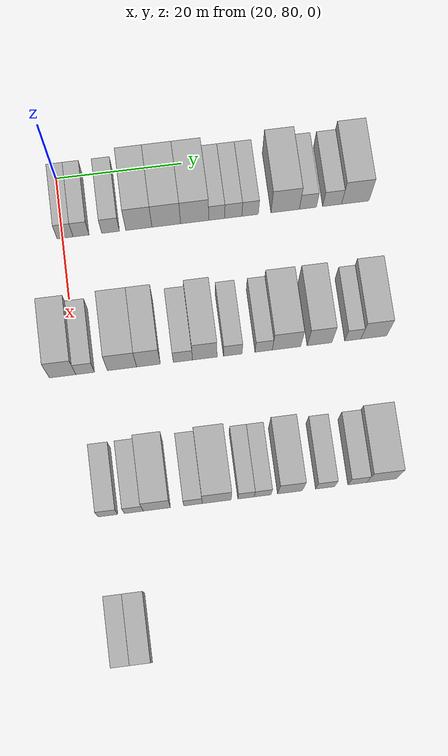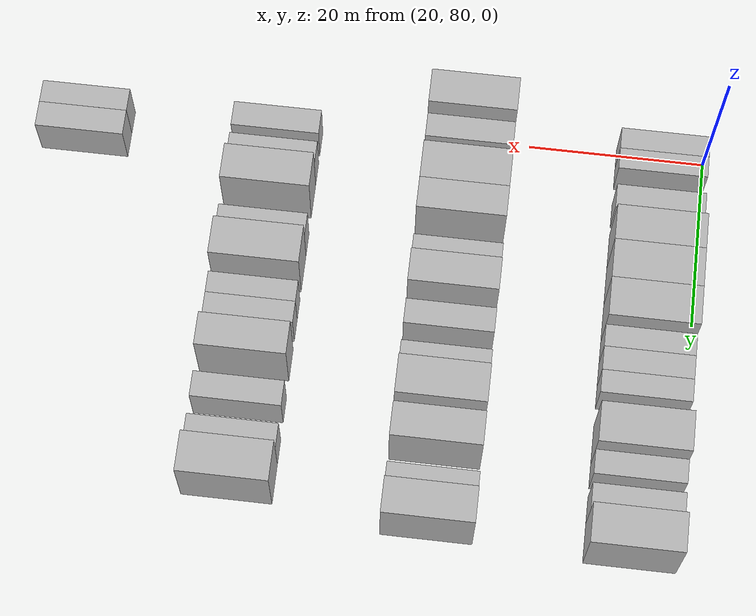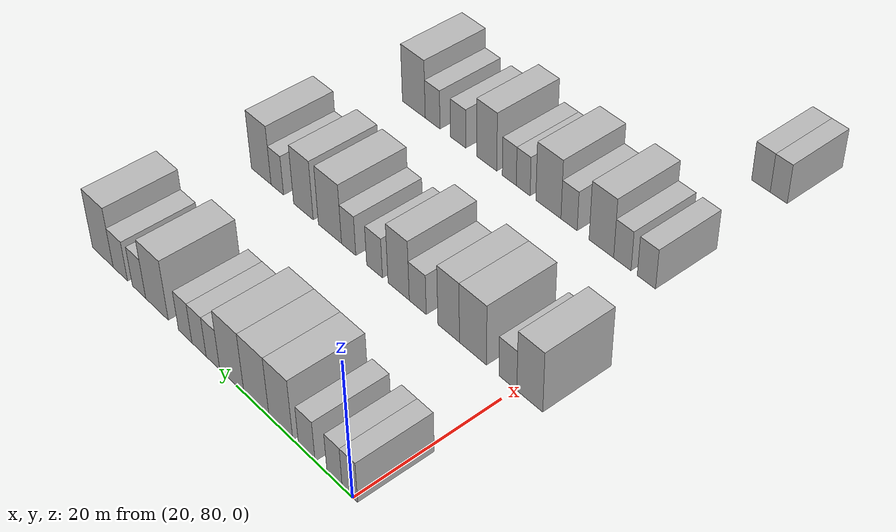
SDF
<sdf version="1.6">
 <world name="default">
  <model name="building_107">
   <static>1</static>
   <pose>25.0000 80.4806 0 0.000000 0.000000 0.000000</pose>
   <link name="link">
    <pose>0 0 3.00 0 0 0</pose>
    <collision name="collision"><geometry><box><size>10.0000 2.5077 6.0000</size></box></geometry></collision>
    <visual name="visual">
     <cast_shadows>0</cast_shadows>
     <geometry><box><size>10.0000 2.5077 6.0000</size></box></geometry>
     <material>
      <script>
       <uri>model://HANNAS_wall/materials/scripts</uri>
       <uri>model://HANNAS_wall/materials/textures</uri>
       <name>vrc/HANNAS_wall</name>
      </script>
     </material>
    </visual>
   </link>
  </model>
  <model name="building_108">
   <static>1</static>
   <pose>25.0000 82.9794 0 0.000000 0.000000 0.000000</pose>
   <link name="link">
    <pose>0 0 3.00 0 0 0</pose>
    <collision name="collision"><geometry><box><size>10.0000 2.4899 6.0000</size></box></geometry></collision>
    <visual name="visual">
     <cast_shadows>0</cast_shadows>
     <geometry><box><size>10.0000 2.4899 6.0000</size></box></geometry>
     <material>
      <script>
       <uri>model://HANNAS_wall/materials/scripts</uri>
       <uri>model://HANNAS_wall/materials/textures</uri>
       <name>vrc/HANNAS_wall</name>
      </script>
     </material>
    </visual>
   </link>
  </model>
  <model name="building_109">
   <static>1</static>
   <pose>25.0000 87.6174 0 0.000000 0.000000 0.000000</pose>
   <link name="link">
    <pose>0 0 3.00 0 0 0</pose>
    <collision name="collision"><geometry><box><size>10.0000 2.7862 6.0000</size></box></geometry></collision>
    <visual name="visual">
     <cast_shadows>0</cast_shadows>
     <geometry><box><size>10.0000 2.7862 6.0000</size></box></geometry>
     <material>
      <script>
       <uri>model://HANNAS_wall/materials/scripts</uri>
       <uri>model://HANNAS_wall/materials/textures</uri>
       <name>vrc/HANNAS_wall</name>
      </script>
     </material>
    </visual>
   </link>
  </model>
  <model name="building_110">
   <static>1</static>
   <pose>25.0000 92.0696 0 0.000000 0.000000 0.000000</pose>
   <link name="link">
    <pose>0 0 4.50 0 0 0</pose>
    <collision name="collision"><geometry><box><size>10.0000 4.1181 9.0000</size></box></geometry></collision>
    <visual name="visual">
     <cast_shadows>0</cast_shadows>
     <geometry><box><size>10.0000 4.1181 9.0000</size></box></geometry>
     <material>
      <script>
       <uri>model://HANNAS_wall/materials/scripts</uri>
       <uri>model://HANNAS_wall/materials/textures</uri>
       <name>vrc/HANNAS_wall</name>
      </script>
     </material>
    </visual>
   </link>
  </model>
  <model name="building_111">
   <static>1</static>
   <pose>25.0000 96.3772 0 0.000000 0.000000 0.000000</pose>
   <link name="link">
    <pose>0 0 4.50 0 0 0</pose>
    <collision name="collision"><geometry><box><size>10.0000 4.4972 9.0000</size></box></geometry></collision>
    <visual name="visual">
     <cast_shadows>0</cast_shadows>
     <geometry><box><size>10.0000 4.4972 9.0000</size></box></geometry>
     <material>
      <script>
       <uri>model://HANNAS_wall/materials/scripts</uri>
       <uri>model://HANNAS_wall/materials/textures</uri>
       <name>vrc/HANNAS_wall</name>
      </script>
     </material>
    </visual>
   </link>
  </model>
  <model name="building_112">
   <static>1</static>
   <pose>25.0000 100.8477 0 0.000000 0.000000 0.000000</pose>
   <link name="link">
    <pose>0 0 4.50 0 0 0</pose>
    <collision name="collision"><geometry><box><size>10.0000 4.4437 9.0000</size></box></geometry></collision>
    <visual name="visual">
     <cast_shadows>0</cast_shadows>
     <geometry><box><size>10.0000 4.4437 9.0000</size></box></geometry>
     <material>
      <script>
       <uri>model://HANNAS_wall/materials/scripts</uri>
       <uri>model://HANNAS_wall/materials/textures</uri>
       <name>vrc/HANNAS_wall</name>
      </script>
     </material>
    </visual>
   </link>
  </model>
  <model name="building_113">
   <static>1</static>
   <pose>25.0000 104.3367 0 0.000000 0.000000 0.000000</pose>
   <link name="link">
    <pose>0 0 3.00 0 0 0</pose>
    <collision name="collision"><geometry><box><size>10.0000 2.5344 6.0000</size></box></geometry></collision>
    <visual name="visual">
     <cast_shadows>0</cast_shadows>
     <geometry><box><size>10.0000 2.5344 6.0000</size></box></geometry>
     <material>
      <script>
       <uri>model://HANNAS_wall/materials/scripts</uri>
       <uri>model://HANNAS_wall/materials/textures</uri>
       <name>vrc/HANNAS_wall</name>
      </script>
     </material>
    </visual>
   </link>
  </model>
  <model name="building_114">
   <static>1</static>
   <pose>25.0000 106.9568 0 0.000000 0.000000 0.000000</pose>
   <link name="link">
    <pose>0 0 3.00 0 0 0</pose>
    <collision name="collision"><geometry><box><size>10.0000 2.7058 6.0000</size></box></geometry></collision>
    <visual name="visual">
     <cast_shadows>0</cast_shadows>
     <geometry><box><size>10.0000 2.7058 6.0000</size></box></geometry>
     <material>
      <script>
       <uri>model://HANNAS_wall/materials/scripts</uri>
       <uri>model://HANNAS_wall/materials/textures</uri>
       <name>vrc/HANNAS_wall</name>
      </script>
     </material>
    </visual>
   </link>
  </model>
  <model name="building_115">
   <static>1</static>
   <pose>25.0000 109.6097 0 0.000000 0.000000 0.000000</pose>
   <link name="link">
    <pose>0 0 3.00 0 0 0</pose>
    <collision name="collision"><geometry><box><size>10.0000 2.5999 6.0000</size></box></geometry></collision>
    <visual name="visual">
     <cast_shadows>0</cast_shadows>
     <geometry><box><size>10.0000 2.5999 6.0000</size></box></geometry>
     <material>
      <script>
       <uri>model://HANNAS_wall/materials/scripts</uri>
       <uri>model://HANNAS_wall/materials/textures</uri>
       <name>vrc/HANNAS_wall</name>
      </script>
     </material>
    </visual>
   </link>
  </model>
  <model name="building_116">
   <static>1</static>
   <pose>25.0000 115.1558 0 0.000000 0.000000 0.000000</pose>
   <link name="link">
    <pose>0 0 4.50 0 0 0</pose>
    <collision name="collision"><geometry><box><size>10.0000 4.4924 9.0000</size></box></geometry></collision>
    <visual name="visual">
     <cast_shadows>0</cast_shadows>
     <geometry><box><size>10.0000 4.4924 9.0000</size></box></geometry>
     <material>
      <script>
       <uri>model://HANNAS_wall/materials/scripts</uri>
       <uri>model://HANNAS_wall/materials/textures</uri>
       <name>vrc/HANNAS_wall</name>
      </script>
     </material>
    </visual>
   </link>
  </model>
  <model name="building_117">
   <static>1</static>
   <pose>25.0000 118.7515 0 0.000000 0.000000 0.000000</pose>
   <link name="link">
    <pose>0 0 3.00 0 0 0</pose>
    <collision name="collision"><geometry><box><size>10.0000 2.6989 6.0000</size></box></geometry></collision>
    <visual name="visual">
     <cast_shadows>0</cast_shadows>
     <geometry><box><size>10.0000 2.6989 6.0000</size></box></geometry>
     <material>
      <script>
       <uri>model://HANNAS_wall/materials/scripts</uri>
       <uri>model://HANNAS_wall/materials/textures</uri>
       <name>vrc/HANNAS_wall</name>
      </script>
     </material>
    </visual>
   </link>
  </model>
  <model name="building_118">
   <static>1</static>
   <pose>25.0000 122.5952 0 0.000000 0.000000 0.000000</pose>
   <link name="link">
    <pose>0 0 3.00 0 0 0</pose>
    <collision name="collision"><geometry><box><size>10.0000 2.9885 6.0000</size></box></geometry></collision>
    <visual name="visual">
     <cast_shadows>0</cast_shadows>
     <geometry><box><size>10.0000 2.9885 6.0000</size></box></geometry>
     <material>
      <script>
       <uri>model://HANNAS_wall/materials/scripts</uri>
       <uri>model://HANNAS_wall/materials/textures</uri>
       <name>vrc/HANNAS_wall</name>
      </script>
     </material>
    </visual>
   </link>
  </model>
  <model name="building_119">
   <static>1</static>
   <pose>25.0000 126.2687 0 0.000000 0.000000 0.000000</pose>
   <link name="link">
    <pose>0 0 4.50 0 0 0</pose>
    <collision name="collision"><geometry><box><size>10.0000 4.3585 9.0000</size></box></geometry></collision>
    <visual name="visual">
     <cast_shadows>0</cast_shadows>
     <geometry><box><size>10.0000 4.3585 9.0000</size></box></geometry>
     <material>
      <script>
       <uri>model://HANNAS_wall/materials/scripts</uri>
       <uri>model://HANNAS_wall/materials/textures</uri>
       <name>vrc/HANNAS_wall</name>
      </script>
     </material>
    </visual>
   </link>
  </model>
  <model name="building_301">
   <static>1</static>
   <pose>47.0000 77.8522 0 0.000000 0.000000 0.000000</pose>
   <link name="link">
    <pose>0 0 4.50 0 0 0</pose>
    <collision name="collision"><geometry><box><size>10.0000 4.0526 9.0000</size></box></geometry></collision>
    <visual name="visual">
     <cast_shadows>0</cast_shadows>
     <geometry><box><size>10.0000 4.0526 9.0000</size></box></geometry>
     <material>
      <script>
       <uri>model://HANNAS_wall/materials/scripts</uri>
       <uri>model://HANNAS_wall/materials/textures</uri>
       <name>vrc/HANNAS_wall</name>
      </script>
     </material>
    </visual>
   </link>
  </model>
  <model name="building_302">
   <static>1</static>
   <pose>47.0000 81.3037 0 0.000000 0.000000 0.000000</pose>
   <link name="link">
    <pose>0 0 3.00 0 0 0</pose>
    <collision name="collision"><geometry><box><size>10.0000 2.8504 6.0000</size></box></geometry></collision>
    <visual name="visual">
     <cast_shadows>0</cast_shadows>
     <geometry><box><size>10.0000 2.8504 6.0000</size></box></geometry>
     <material>
      <script>
       <uri>model://HANNAS_wall/materials/scripts</uri>
       <uri>model://HANNAS_wall/materials/textures</uri>
       <name>vrc/HANNAS_wall</name>
      </script>
     </material>
    </visual>
   </link>
  </model>
  <model name="building_303">
   <static>1</static>
   <pose>47.0000 86.9668 0 0.000000 0.000000 0.000000</pose>
   <link name="link">
    <pose>0 0 4.50 0 0 0</pose>
    <collision name="collision"><geometry><box><size>10.0000 4.4757 9.0000</size></box></geometry></collision>
    <visual name="visual">
     <cast_shadows>0</cast_shadows>
     <geometry><box><size>10.0000 4.4757 9.0000</size></box></geometry>
     <material>
      <script>
       <uri>model://HANNAS_wall/materials/scripts</uri>
       <uri>model://HANNAS_wall/materials/textures</uri>
       <name>vrc/HANNAS_wall</name>
      </script>
     </material>
    </visual>
   </link>
  </model>
  <model name="building_304">
   <static>1</static>
   <pose>47.0000 91.0204 0 0.000000 0.000000 0.000000</pose>
   <link name="link">
    <pose>0 0 4.50 0 0 0</pose>
    <collision name="collision"><geometry><box><size>10.0000 3.6315 9.0000</size></box></geometry></collision>
    <visual name="visual">
     <cast_shadows>0</cast_shadows>
     <geometry><box><size>10.0000 3.6315 9.0000</size></box></geometry>
     <material>
      <script>
       <uri>model://HANNAS_wall/materials/scripts</uri>
       <uri>model://HANNAS_wall/materials/textures</uri>
       <name>vrc/HANNAS_wall</name>
      </script>
     </material>
    </visual>
   </link>
  </model>
  <model name="building_305">
   <static>1</static>
   <pose>47.0000 96.3102 0 0.000000 0.000000 0.000000</pose>
   <link name="link">
    <pose>0 0 3.00 0 0 0</pose>
    <collision name="collision"><geometry><box><size>10.0000 2.9480 6.0000</size></box></geometry></collision>
    <visual name="visual">
     <cast_shadows>0</cast_shadows>
     <geometry><box><size>10.0000 2.9480 6.0000</size></box></geometry>
     <material>
      <script>
       <uri>model://HANNAS_wall/materials/scripts</uri>
       <uri>model://HANNAS_wall/materials/textures</uri>
       <name>vrc/HANNAS_wall</name>
      </script>
     </material>
    </visual>
   </link>
  </model>
  <model name="building_306">
   <static>1</static>
   <pose>47.0000 99.6657 0 0.000000 0.000000 0.000000</pose>
   <link name="link">
    <pose>0 0 4.50 0 0 0</pose>
    <collision name="collision"><geometry><box><size>10.0000 3.7630 9.0000</size></box></geometry></collision>
    <visual name="visual">
     <cast_shadows>0</cast_shadows>
     <geometry><box><size>10.0000 3.7630 9.0000</size></box></geometry>
     <material>
      <script>
       <uri>model://HANNAS_wall/materials/scripts</uri>
       <uri>model://HANNAS_wall/materials/textures</uri>
       <name>vrc/HANNAS_wall</name>
      </script>
     </material>
    </visual>
   </link>
  </model>
  <model name="building_307">
   <static>1</static>
   <pose>47.0000 103.9807 0 0.000000 0.000000 0.000000</pose>
   <link name="link">
    <pose>0 0 3.00 0 0 0</pose>
    <collision name="collision"><geometry><box><size>10.0000 2.8671 6.0000</size></box></geometry></collision>
    <visual name="visual">
     <cast_shadows>0</cast_shadows>
     <geometry><box><size>10.0000 2.8671 6.0000</size></box></geometry>
     <material>
      <script>
       <uri>model://HANNAS_wall/materials/scripts</uri>
       <uri>model://HANNAS_wall/materials/textures</uri>
       <name>vrc/HANNAS_wall</name>
      </script>
     </material>
    </visual>
   </link>
  </model>
  <model name="building_308">
   <static>1</static>
   <pose>47.0000 108.7445 0 0.000000 0.000000 0.000000</pose>
   <link name="link">
    <pose>0 0 3.00 0 0 0</pose>
    <collision name="collision"><geometry><box><size>10.0000 2.6604 6.0000</size></box></geometry></collision>
    <visual name="visual">
     <cast_shadows>0</cast_shadows>
     <geometry><box><size>10.0000 2.6604 6.0000</size></box></geometry>
     <material>
      <script>
       <uri>model://HANNAS_wall/materials/scripts</uri>
       <uri>model://HANNAS_wall/materials/textures</uri>
       <name>vrc/HANNAS_wall</name>
      </script>
     </material>
    </visual>
   </link>
  </model>
  <model name="building_309">
   <static>1</static>
   <pose>47.0000 112.2692 0 0.000000 0.000000 0.000000</pose>
   <link name="link">
    <pose>0 0 4.50 0 0 0</pose>
    <collision name="collision"><geometry><box><size>10.0000 4.3890 9.0000</size></box></geometry></collision>
    <visual name="visual">
     <cast_shadows>0</cast_shadows>
     <geometry><box><size>10.0000 4.3890 9.0000</size></box></geometry>
     <material>
      <script>
       <uri>model://HANNAS_wall/materials/scripts</uri>
       <uri>model://HANNAS_wall/materials/textures</uri>
       <name>vrc/HANNAS_wall</name>
      </script>
     </material>
    </visual>
   </link>
  </model>
  <model name="building_310">
   <static>1</static>
   <pose>47.0000 117.3725 0 0.000000 0.000000 0.000000</pose>
   <link name="link">
    <pose>0 0 4.50 0 0 0</pose>
    <collision name="collision"><geometry><box><size>10.0000 3.8176 9.0000</size></box></geometry></collision>
    <visual name="visual">
     <cast_shadows>0</cast_shadows>
     <geometry><box><size>10.0000 3.8176 9.0000</size></box></geometry>
     <material>
      <script>
       <uri>model://HANNAS_wall/materials/scripts</uri>
       <uri>model://HANNAS_wall/materials/textures</uri>
       <name>vrc/HANNAS_wall</name>
      </script>
     </material>
    </visual>
   </link>
  </model>
  <model name="building_311">
   <static>1</static>
   <pose>47.0000 122.5309 0 0.000000 0.000000 0.000000</pose>
   <link name="link">
    <pose>0 0 3.00 0 0 0</pose>
    <collision name="collision"><geometry><box><size>10.0000 2.4991 6.0000</size></box></geometry></collision>
    <visual name="visual">
     <cast_shadows>0</cast_shadows>
     <geometry><box><size>10.0000 2.4991 6.0000</size></box></geometry>
     <material>
      <script>
       <uri>model://HANNAS_wall/materials/scripts</uri>
       <uri>model://HANNAS_wall/materials/textures</uri>
       <name>vrc/HANNAS_wall</name>
      </script>
     </material>
    </visual>
   </link>
  </model>
  <model name="building_312">
   <static>1</static>
   <pose>47.0000 125.7804 0 0.000000 0.000000 0.000000</pose>
   <link name="link">
    <pose>0 0 4.50 0 0 0</pose>
    <collision name="collision"><geometry><box><size>10.0000 3.9999 9.0000</size></box></geometry></collision>
    <visual name="visual">
     <cast_shadows>0</cast_shadows>
     <geometry><box><size>10.0000 3.9999 9.0000</size></box></geometry>
     <material>
      <script>
       <uri>model://HANNAS_wall/materials/scripts</uri>
       <uri>model://HANNAS_wall/materials/textures</uri>
       <name>vrc/HANNAS_wall</name>
      </script>
     </material>
    </visual>
   </link>
  </model>
  <model name="building_490">
   <static>1</static>
   <pose>69.0000 82.4155 0 0.000000 0.000000 0.000000</pose>
   <link name="link">
    <pose>0 0 3.00 0 0 0</pose>
    <collision name="collision"><geometry><box><size>10.0000 2.9071 6.0000</size></box></geometry></collision>
    <visual name="visual">
     <cast_shadows>0</cast_shadows>
     <geometry><box><size>10.0000 2.9071 6.0000</size></box></geometry>
     <material>
      <script>
       <uri>model://HANNAS_wall/materials/scripts</uri>
       <uri>model://HANNAS_wall/materials/textures</uri>
       <name>vrc/HANNAS_wall</name>
      </script>
     </material>
    </visual>
   </link>
  </model>
  <model name="building_491">
   <static>1</static>
   <pose>69.0000 86.2761 0 0.000000 0.000000 0.000000</pose>
   <link name="link">
    <pose>0 0 3.00 0 0 0</pose>
    <collision name="collision"><geometry><box><size>10.0000 2.8140 6.0000</size></box></geometry></collision>
    <visual name="visual">
     <cast_shadows>0</cast_shadows>
     <geometry><box><size>10.0000 2.8140 6.0000</size></box></geometry>
     <material>
      <script>
       <uri>model://HANNAS_wall/materials/scripts</uri>
       <uri>model://HANNAS_wall/materials/textures</uri>
       <name>vrc/HANNAS_wall</name>
      </script>
     </material>
    </visual>
   </link>
  </model>
  <model name="building_492">
   <static>1</static>
   <pose>69.0000 89.7167 0 0.000000 0.000000 0.000000</pose>
   <link name="link">
    <pose>0 0 4.50 0 0 0</pose>
    <collision name="collision"><geometry><box><size>10.0000 4.0672 9.0000</size></box></geometry></collision>
    <visual name="visual">
     <cast_shadows>0</cast_shadows>
     <geometry><box><size>10.0000 4.0672 9.0000</size></box></geometry>
     <material>
      <script>
       <uri>model://HANNAS_wall/materials/scripts</uri>
       <uri>model://HANNAS_wall/materials/textures</uri>
       <name>vrc/HANNAS_wall</name>
      </script>
     </material>
    </visual>
   </link>
  </model>
  <model name="building_493">
   <static>1</static>
   <pose>69.0000 95.1281 0 0.000000 0.000000 0.000000</pose>
   <link name="link">
    <pose>0 0 3.00 0 0 0</pose>
    <collision name="collision"><geometry><box><size>10.0000 2.7556 6.0000</size></box></geometry></collision>
    <visual name="visual">
     <cast_shadows>0</cast_shadows>
     <geometry><box><size>10.0000 2.7556 6.0000</size></box></geometry>
     <material>
      <script>
       <uri>model://HANNAS_wall/materials/scripts</uri>
       <uri>model://HANNAS_wall/materials/textures</uri>
       <name>vrc/HANNAS_wall</name>
      </script>
     </material>
    </visual>
   </link>
  </model>
  <model name="building_494">
   <static>1</static>
   <pose>69.0000 98.6850 0 0.000000 0.000000 0.000000</pose>
   <link name="link">
    <pose>0 0 4.50 0 0 0</pose>
    <collision name="collision"><geometry><box><size>10.0000 4.3582 9.0000</size></box></geometry></collision>
    <visual name="visual">
     <cast_shadows>0</cast_shadows>
     <geometry><box><size>10.0000 4.3582 9.0000</size></box></geometry>
     <material>
      <script>
       <uri>model://HANNAS_wall/materials/scripts</uri>
       <uri>model://HANNAS_wall/materials/textures</uri>
       <name>vrc/HANNAS_wall</name>
      </script>
     </material>
    </visual>
   </link>
  </model>
  <model name="building_495">
   <static>1</static>
   <pose>69.0000 103.0938 0 0.000000 0.000000 0.000000</pose>
   <link name="link">
    <pose>0 0 3.00 0 0 0</pose>
    <collision name="collision"><geometry><box><size>10.0000 2.4593 6.0000</size></box></geometry></collision>
    <visual name="visual">
     <cast_shadows>0</cast_shadows>
     <geometry><box><size>10.0000 2.4593 6.0000</size></box></geometry>
     <material>
      <script>
       <uri>model://HANNAS_wall/materials/scripts</uri>
       <uri>model://HANNAS_wall/materials/textures</uri>
       <name>vrc/HANNAS_wall</name>
      </script>
     </material>
    </visual>
   </link>
  </model>
  <model name="building_496">
   <static>1</static>
   <pose>69.0000 105.5782 0 0.000000 0.000000 0.000000</pose>
   <link name="link">
    <pose>0 0 3.00 0 0 0</pose>
    <collision name="collision"><geometry><box><size>10.0000 2.5095 6.0000</size></box></geometry></collision>
    <visual name="visual">
     <cast_shadows>0</cast_shadows>
     <geometry><box><size>10.0000 2.5095 6.0000</size></box></geometry>
     <material>
      <script>
       <uri>model://HANNAS_wall/materials/scripts</uri>
       <uri>model://HANNAS_wall/materials/textures</uri>
       <name>vrc/HANNAS_wall</name>
      </script>
     </material>
    </visual>
   </link>
  </model>
  <model name="building_497">
   <static>1</static>
   <pose>69.0000 109.6958 0 0.000000 0.000000 0.000000</pose>
   <link name="link">
    <pose>0 0 4.50 0 0 0</pose>
    <collision name="collision"><geometry><box><size>10.0000 3.7257 9.0000</size></box></geometry></collision>
    <visual name="visual">
     <cast_shadows>0</cast_shadows>
     <geometry><box><size>10.0000 3.7257 9.0000</size></box></geometry>
     <material>
      <script>
       <uri>model://HANNAS_wall/materials/scripts</uri>
       <uri>model://HANNAS_wall/materials/textures</uri>
       <name>vrc/HANNAS_wall</name>
      </script>
     </material>
    </visual>
   </link>
  </model>
  <model name="building_498">
   <static>1</static>
   <pose>69.0000 114.9988 0 0.000000 0.000000 0.000000</pose>
   <link name="link">
    <pose>0 0 3.00 0 0 0</pose>
    <collision name="collision"><geometry><box><size>10.0000 2.8801 6.0000</size></box></geometry></collision>
    <visual name="visual">
     <cast_shadows>0</cast_shadows>
     <geometry><box><size>10.0000 2.8801 6.0000</size></box></geometry>
     <material>
      <script>
       <uri>model://HANNAS_wall/materials/scripts</uri>
       <uri>model://HANNAS_wall/materials/textures</uri>
       <name>vrc/HANNAS_wall</name>
      </script>
     </material>
    </visual>
   </link>
  </model>
  <model name="building_499">
   <static>1</static>
   <pose>69.0000 119.8675 0 0.000000 0.000000 0.000000</pose>
   <link name="link">
    <pose>0 0 3.00 0 0 0</pose>
    <collision name="collision"><geometry><box><size>10.0000 2.8573 6.0000</size></box></geometry></collision>
    <visual name="visual">
     <cast_shadows>0</cast_shadows>
     <geometry><box><size>10.0000 2.8573 6.0000</size></box></geometry>
     <material>
      <script>
       <uri>model://HANNAS_wall/materials/scripts</uri>
       <uri>model://HANNAS_wall/materials/textures</uri>
       <name>vrc/HANNAS_wall</name>
      </script>
     </material>
    </visual>
   </link>
  </model>
  <model name="building_500">
   <static>1</static>
   <pose>69.0000 123.5371 0 0.000000 0.000000 0.000000</pose>
   <link name="link">
    <pose>0 0 4.50 0 0 0</pose>
    <collision name="collision"><geometry><box><size>10.0000 4.4820 9.0000</size></box></geometry></collision>
    <visual name="visual">
     <cast_shadows>0</cast_shadows>
     <geometry><box><size>10.0000 4.4820 9.0000</size></box></geometry>
     <material>
      <script>
       <uri>model://HANNAS_wall/materials/scripts</uri>
       <uri>model://HANNAS_wall/materials/textures</uri>
       <name>vrc/HANNAS_wall</name>
      </script>
     </material>
    </visual>
   </link>
  </model>
  <model name="building_683">
   <static>1</static>
   <pose>91.0000 82.1608 0 0.000000 0.000000 0.000000</pose>
   <link name="link">
    <pose>0 0 3.00 0 0 0</pose>
    <collision name="collision"><geometry><box><size>10.0000 2.6823 6.0000</size></box></geometry></collision>
    <visual name="visual">
     <cast_shadows>0</cast_shadows>
     <geometry><box><size>10.0000 2.6823 6.0000</size></box></geometry>
     <material>
      <script>
       <uri>model://HANNAS_wall/materials/scripts</uri>
       <uri>model://HANNAS_wall/materials/textures</uri>
       <name>vrc/HANNAS_wall</name>
      </script>
     </material>
    </visual>
   </link>
  </model>
  <model name="building_684">
   <static>1</static>
   <pose>91.0000 84.9955 0 0.000000 0.000000 0.000000</pose>
   <link name="link">
    <pose>0 0 3.00 0 0 0</pose>
    <collision name="collision"><geometry><box><size>10.0000 2.9870 6.0000</size></box></geometry></collision>
    <visual name="visual">
     <cast_shadows>0</cast_shadows>
     <geometry><box><size>10.0000 2.9870 6.0000</size></box></geometry>
     <material>
      <script>
       <uri>model://HANNAS_wall/materials/scripts</uri>
       <uri>model://HANNAS_wall/materials/textures</uri>
       <name>vrc/HANNAS_wall</name>
      </script>
     </material>
    </visual>
   </link>
  </model>
 </world>
</sdf>
